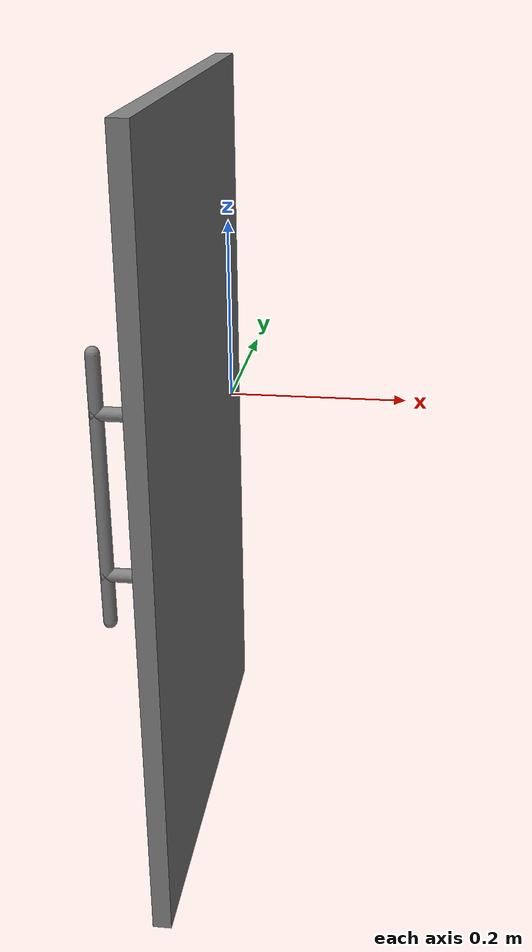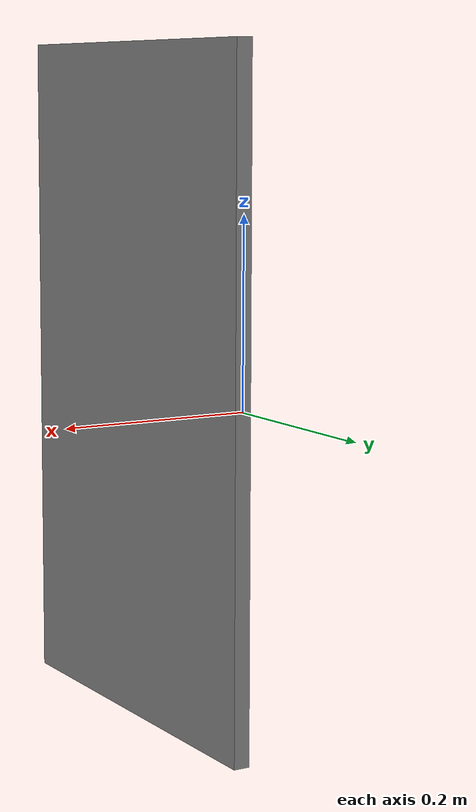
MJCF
<!-- from https://github.com/vikashplus/mj_envs/tree/master/mj_envs/hand_manipulation_suite/assets -->
<!-- Information about door can be found in this paper: https://arxiv.org/pdf/1709.10087.pdf -->

<mujoco model="door">
    <worldbody>
      <body name="door_body">
        <body name="collision">
          <body name="frame" pos="0 0 0" quat="0.707388 0 0 -0.706825">
              <inertial pos="0.29 0 0" quat="0.5 0.5 0.5 0.5" mass="7.85398" diaginertia="0.923301 0.764585 0.168533" />
              <body name="door" pos="0.225 0 0">
                  <inertial pos="0.0296816 -0.00152345 0" quat="0.701072 0 0 0.713091" mass="4.92" diaginertia="0.0913751 0.0521615 0.043714" />
                  <joint name="door_hinge" pos="-0.225 0 0" axis="0 0 1" range="-3.14 0" limited="true"  damping="10.0" />

                  <geom size="0.225 0.009 0.375" type="box" friction="1 1 1" group="1"/>

                  <!-- x: latch is 0.0023 away from side of the door + 0.006 = 0.0083   -->
                  <!-- z: 0.30 from top of the door  door origin z is set at midpoint 0.375, so it's 0.075 -->
                  <!-- y: 0.0274 from door + 0.006 + 0.009 = 0.0324 -->

                  <!-- cylinder  -->
                  <!-- x is the same -->
                  <!-- y is length 0.0135+0.009-->
                  <!-- z is 0.215 from the top of the door. z midpoint is 0.375, so it's 0.160-->
                  <!-- second cylidner is 0.375 from top of the door, so 0 -->
                  <body name="latch" pos="0.225 0 0">
                      <inertial pos="-0.017762 0.0138544 0" quat="0.365653 0.605347 -0.36522 0.605365" mass="0.10" diaginertia="0.0483771 0.0410001 0.0111013" />
                      <geom size="0.006 0.0135" pos="-0.0083 -0.0225 0.1450" quat="0.707388 0.706825 0 0" type="cylinder"  group="1" />
                      <geom size="0.006 0.0135" pos="-0.0083 -0.0225 0" quat="0.707388 0.706825 0 0" type="cylinder"  group="1" />

                      <geom size="0.006 0.12" pos="-0.0083 -0.0324 0.075" quat="0.707388 0 0 0.706825" type="capsule"  group="1"/>

                      <site name="S_handle" pos="-0.0083 -0.0324 0.182" size="0.0001" group="0" />

                  </body>
              </body>
          </body>
        </body>
      </body>
    </worldbody>
</mujoco>
